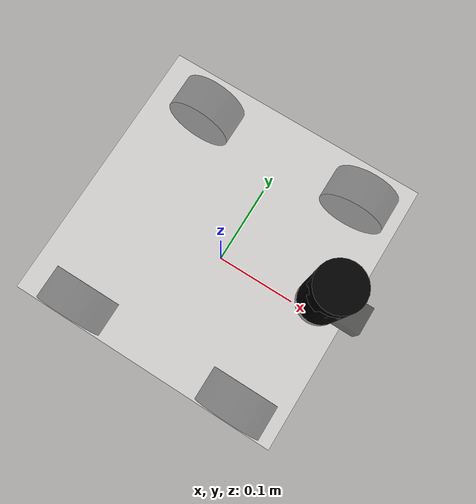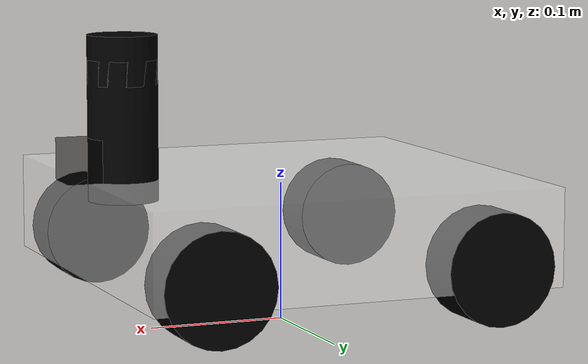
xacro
<?xml version="1.0"?>
<robot xmlns:xacro= "http://www.ros.org/wiki/xacro" name="delivery_robot">
<!-- 实车默认只加载模型；仿真入口显式开启插件并传入控制器配置。 -->
<xacro:arg name="simulation" default="false"/>
<xacro:arg name="controllers_file" default=""/>

<!-- 底盘 -->
<xacro:include filename="$(find delivery_description)/urdf/delivery_robot/base.urdf.xacro"/>
<!-- 传感器 -->
<xacro:include filename="$(find delivery_description)/urdf/delivery_robot/sensor/camera.urdf.xacro"/>
<xacro:include filename="$(find delivery_description)/urdf/delivery_robot/sensor/imu.urdf.xacro"/>
<xacro:include filename="$(find delivery_description)/urdf/delivery_robot/sensor/laser.urdf.xacro"/>
<!-- 执行器 -->
<xacro:include filename="$(find delivery_description)/urdf/delivery_robot/wheel/wheel.urdf.xacro"/>
<!-- 插件 -->
<xacro:include filename="$(find delivery_description)/urdf/delivery_robot/plugins/delivery_ros2_control.xacro"/>

<!-- 下位机参数是从车体中心到车轮中心的半尺寸：半轴距 0.103 m、半轮距 0.133 m。 -->
<xacro:property name="wheelbase_half" value="0.103"/>
<xacro:property name="track_half" value="0.133"/>

<xacro:base_xacro xyz="0.30 0.305 0.07"/>
<xacro:imu_xacro xyz="-0.065 0.02 0.0"/>
<xacro:laser_xacro xyz="0.12 0.0 0.07"/>
<xacro:camera_xacro xyz="0.15 0.0 0.05"/>
<xacro:wheel_xacro wheel_name="LeftFront_wheel" xyz="${wheelbase_half} ${track_half} -0.02"/>
<xacro:wheel_xacro wheel_name="LeftBack_wheel" xyz="${-wheelbase_half} ${track_half} -0.02"/>
<xacro:wheel_xacro wheel_name="RightFront_wheel" xyz="${wheelbase_half} ${-track_half} -0.02"/>
<xacro:wheel_xacro wheel_name="RightBack_wheel" xyz="${-wheelbase_half} ${-track_half} -0.02"/>

<xacro:if value="$(arg simulation)">
<xacro:delivery_ros2_control controllers_file="$(arg controllers_file)"/>
<!-- 接入二维雷达、IMU 与普通 RGB 相机仿真。 -->
<xacro:include filename="$(find delivery_description)/urdf/delivery_robot/plugins/gazebo_sensor_plugin.xacro"/>
<xacro:gazebo_sensor_plugin/>
</xacro:if>
</robot>

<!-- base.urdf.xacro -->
<robot xmlns:xacro= "http://www.ros.org/wiki/xacro">
    <xacro:include filename="$(find delivery_description)/urdf/delivery_robot/mass_inertia.xacro"/>

    <xacro:macro name="base_xacro" params="xyz">
        <!-- 虚拟部件 -->
        <link name="base_footprint"/>

        <!-- 机器人的身体部分 -->
        <link name="base_link">
            <!-- 部件的外观描述 -->
            <visual>
                <!-- 沿着自己几何中心的偏移和旋转量 -->
                <origin xyz="0.0 0.0 0.0" rpy="0.0 0.0 0.0"/>
                <!-- 几何形状 -->
                <geometry>
                    <!-- 立方体 -->
                    <box size="${xyz}"/>
                </geometry>
                <!-- 材质和颜色描述 -->
                <material name="white">
                    <color rgba="1.0 1.0 1.0 0.5"/>
                </material>
            </visual>
            <collision>
                <!-- 沿着自己几何中心的偏移和旋转量 -->
                <origin xyz="0.0 0.0 0.0" rpy="0.0 0.0 0.0"/>
                <!-- 几何形状 -->
                <geometry>
                    <!-- 立方体 -->
                    <box size="${xyz}"/>
                </geometry>
                <!-- 材质和颜色描述 -->
                <material name="white">
                    <color rgba="1.0 1.0 1.0 0.5"/>
                </material>
            </collision>
            <xacro:box_inertia m="2" w="0.4" h="0.3" d="0.07"/>

        </link>

        <joint name="base_footprint_joint" type="fixed">
            <origin xyz="0.0 0.0 ${0.035 + 0.04 - 0.001}" rpy="0.0 0.0 0.0"/>
            <parent link="base_footprint"/>
            <child link="base_link"/>
        </joint>
    </xacro:macro>

</robot>

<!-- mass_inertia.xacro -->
<robot xmlns:xacro="http://www.ros.org/wiki/xacro">

    <xacro:macro name="box_inertia" params="m w h d">

        <inertial>

            <mass value="${m}"/>

            <inertia
                ixx="${(m/12.0) * (h*h + d*d)}"
                ixy="0.0"
                ixz="0.0"

                iyy="${(m/12.0) * (w*w + d*d)}"
                iyz="0.0"

                izz="${(m/12.0) * (w*w + h*h)}"
            />

        </inertial>

    </xacro:macro>

    <xacro:macro name="cylinder_inertia" params="m r h">

        <inertial>

            <mass value="${m}"/>

            <inertia
                ixx="${(m/12.0) * (3*r*r + h*h)}"
                ixy="0.0"
                ixz="0.0"

                iyy="${(m/12.0) * (3*r*r + h*h)}"
                iyz="0.0"

                izz="${(m/2.0) * r*r}"
            />

        </inertial>

    </xacro:macro>

    <xacro:macro name="cylinder_inertia_y" params="m r h">

        <inertial>

            <mass value="${m}"/>

            <inertia
                ixx="${(m/12.0) * (3*r*r + h*h)}"
                ixy="0.0"
                ixz="0.0"

                iyy="${(m/2.0) * r*r}"
                iyz="0.0"

                izz="${(m/12.0) * (3*r*r + h*h)}"
            />

        </inertial>

    </xacro:macro>

    <!-- =========================================================
         实心球体惯量

         三个方向完全相同：

             I = 2/5 * m * r²
         ========================================================= -->
    <xacro:macro name="sphere_inertia" params="m r">

        <inertial>

            <mass value="${m}"/>

            <inertia
                ixx="${(2.0/5.0) * m * r*r}"
                ixy="0.0"
                ixz="0.0"

                iyy="${(2.0/5.0) * m * r*r}"
                iyz="0.0"

                izz="${(2.0/5.0) * m * r*r}"
            />

        </inertial>

    </xacro:macro>

</robot>

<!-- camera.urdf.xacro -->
<robot xmlns:xacro= "http://www.ros.org/wiki/xacro">
    <xacro:include filename="$(find delivery_description)/urdf/delivery_robot/mass_inertia.xacro"/>

    <xacro:macro name="camera_xacro" params="xyz">
        <!-- 机器人的相机部件 -->
        <link name="camera_link">
            <!-- 部件的外观描述 -->
            <visual>
                <!-- 沿着自己几何中心的偏移和旋转量 -->
                <origin xyz="0.0 0.0 0.0" rpy="0.0 0.0 0.0"/>
                <!-- 几何形状 -->
                <geometry>
                    <!-- 立方体 -->
                    <box size="0.03 0.03 0.03"/>
                </geometry>
                <!-- 材质和颜色描述 -->
                <material name="black">
                    <color rgba="0.0 0.0 0.0 0.5"/>
                </material>
            </visual>
            <collision>
                <!-- 沿着自己几何中心的偏移和旋转量 -->
                <origin xyz="0.0 0.0 0.0" rpy="0.0 0.0 0.0"/>
                <!-- 几何形状 -->
                <geometry>
                    <!-- 立方体 -->
                    <box size="0.03 0.03 0.03"/>
                </geometry>
                <!-- 材质和颜色描述 -->
                <material name="black">
                    <color rgba="0.0 0.0 0.0 0.5"/>
                </material>
            </collision>
            <!-- 0.03kg 宽度0.03m 高度0.03m 长度0.03m -->
            <xacro:box_inertia m="0.03" w="0.03" h="0.03" d="0.03"/>
        </link>

        <link name="camera_optical_link"></link>

        <!-- 机器人的关节,用于组合部件 -->
        <joint name="camera_optical_link" type="fixed">
            <parent link="camera_link"/>
            <child link="camera_optical_link"/>
            <origin xyz="0 0 0" rpy="${-pi/2} 0.0 ${-pi/2}"/>
        </joint>

        <!-- 机器人的关节,用于组合部件 -->
        <joint name="camera_joint" type="fixed">
            <parent link="base_link"/>
            <child link="camera_link"/>
            <origin xyz="${xyz}" rpy="0.0 0.0 0.0"/>
        </joint>
    </xacro:macro>

</robot>

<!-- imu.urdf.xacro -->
<robot xmlns:xacro= "http://www.ros.org/wiki/xacro">
    <xacro:include filename="$(find delivery_description)/urdf/delivery_robot/mass_inertia.xacro"/>

    <xacro:macro name="imu_xacro" params="xyz">
        <!-- 机器人的IMU部件 -->
        <link name="imu_link">
            <!-- 部件的外观描述 -->
            <visual>
                <!-- 沿着自己几何中心的偏移和旋转量 -->
                <origin xyz="0.0 0.0 0.0" rpy="0.0 0.0 0.0"/>
                <!-- 几何形状 -->
                <geometry>
                    <!-- 立方体 -->
                    <box size="0.012 0.02 0.003"/>
                </geometry>
                <!-- 材质和颜色描述 -->
                <material name="black">
                    <color rgba="0.0 0.0 0.0 0.5"/>
                </material>
            </visual>
            <collision>
                <!-- 沿着自己几何中心的偏移和旋转量 -->
                <origin xyz="0.0 0.0 0.0" rpy="0.0 0.0 0.0"/>
                <!-- 几何形状 -->
                <geometry>
                    <!-- 立方体 -->
                    <box size="0.012 0.02 0.003"/>
                </geometry>
                <!-- 材质和颜色描述 -->
                <material name="black">
                    <color rgba="0.0 0.0 0.0 0.5"/>
                </material>
            </collision>
            <!-- 0.01kg 宽度0.02m 高度0.003m 长度0.12m -->
            <xacro:box_inertia m="0.01" w="0.02" h="0.003" d="0.12"/>

        </link>

        <!-- 机器人的关节,用于组合部件 -->
        <joint name="imu_joint" type="fixed">
            <parent link="base_link"/>
            <child link="imu_link"/>
            <origin xyz="${xyz}" rpy="0.0 0.0 0.0"/>
        </joint>
    </xacro:macro>

</robot>

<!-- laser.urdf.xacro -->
<robot xmlns:xacro= "http://www.ros.org/wiki/xacro">
    <xacro:include filename="$(find delivery_description)/urdf/delivery_robot/mass_inertia.xacro"/>

    <xacro:macro name="laser_xacro" params="xyz">
        <!-- 雷达支架 -->
        <link name="laserSupport_link">
            <!-- 部件的外观描述 -->
            <visual>
                <!-- 沿着自己几何中心的偏移和旋转量 -->
                <origin xyz="0.0 0.0 0.0" rpy="0.0 0.0 0.0"/>
                <!-- 几何形状 圆柱半径0.025m，高度0.1m -->
                <geometry>
                    <cylinder radius="0.025" length="0.1"/>
                </geometry>
                <!-- 材质和颜色描述 ：黑色 不透明-->
                <material name="black">
                    <color rgba="0.0 0.0 0.0 1.0"/>
                </material>
            </visual>
            <collision>
                <!-- 沿着自己几何中心的偏移和旋转量 -->
                <origin xyz="0.0 0.0 0.0" rpy="0.0 0.0 0.0"/>
                <!-- 几何形状 圆柱半径0.025m，高度0.1m -->
                <geometry>
                    <cylinder radius="0.025" length="0.1"/>
                </geometry>
                <!-- 材质和颜色描述 ：黑色 不透明-->
                <material name="black">
                    <color rgba="0.0 0.0 0.0 1.0"/>
                </material>
            </collision>

            <xacro:cylinder_inertia m="0.1" r="0.025" h="0.1"/>

        </link>

        <link name="laser_link">
            <!-- 部件的外观描述 -->
            <visual>
                <!-- 沿着自己几何中心的偏移和旋转量 -->
                <origin xyz="0.0 0.0 0.0" rpy="0.0 0.0 0.0"/>
                <!-- 几何形状 圆柱半径0.025m，高度0.1m -->
                <geometry>
                    <cylinder radius="0.025" length="0.035"/>
                </geometry>
                <!-- 材质和颜色描述 ：黑色 不透明-->
                <material name="black">
                    <color rgba="0.0 0.0 0.0 1.0"/>
                </material>
            </visual>
            <collision>
                <!-- 沿着自己几何中心的偏移和旋转量 -->
                <origin xyz="0.0 0.0 0.0" rpy="0.0 0.0 0.0"/>
                <!-- 几何形状 圆柱半径0.025m，高度0.1m -->
                <geometry>
                    <cylinder radius="0.025" length="0.035"/>
                </geometry>
                <!-- 材质和颜色描述 ：黑色 不透明-->
                <material name="black">
                    <color rgba="0.0 0.0 0.0 1.0"/>
                </material>
            </collision>
            <xacro:cylinder_inertia  m="0.1" r="0.025" h="0.035"/>
        </link>

        <!-- 雷达固定到支撑杆上 -->
        <joint name="laserSupport_joint" type="fixed">
            <parent link="laserSupport_link"/>
            <child link="laser_link"/>
            <origin xyz="0.0 0.0 0.05" rpy="0.0 0.0 0.0"/>
        </joint>
        <!-- 支撑杆固定在车上 -->
        <joint name="laser_joint" type="fixed">
            <parent link="base_link"/>
            <child link="laserSupport_link"/>
            <origin xyz="${xyz}" rpy="0.0 0.0 0.0"/>
        </joint>

        <gazebo reference="laserSupport_link">
            <material>Gazebo/Black</material>
        </gazebo>

        <gazebo reference="laser_link">
            <material>Gazebo/Black</material>
        </gazebo>

    </xacro:macro>

</robot>

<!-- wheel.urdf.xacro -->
<robot xmlns:xacro="http://www.ros.org/wiki/xacro">
    <xacro:include filename="$(find delivery_description)/urdf/delivery_robot/mass_inertia.xacro"/>

    <xacro:macro name="wheel_xacro" params="wheel_name xyz">
        <!-- 机器人的轮子部件 -->
        <link name="${wheel_name}_link">
            <!-- 圆柱默认轴向是局部 Z；绕 X 旋转 pi/2 后沿轮轴 Y 放置。 -->
            <visual>
                <!-- 沿着自己几何中心的偏移和旋转量 -->
                <origin xyz="0.0 0.0 0.0" rpy="1.57079 0.0 0.0"/>
                <!-- 几何形状 -->
                <geometry>
                    <!-- 圆柱车轮，半径与差速控制器的 wheel_radius 保持一致。 -->
                    <cylinder radius="0.04" length="0.04"/>
                </geometry>
                <!-- 材质和颜色描述 -->
                <material name="black">
                    <color rgba="0.0 0.0 0.0 1.0"/>
                </material>
            </visual>
            <collision>
                <!-- 沿着自己几何中心的偏移和旋转量 -->
                <origin xyz="0.0 0.0 0.0" rpy="1.57079 0.0 0.0"/>
                <!-- 几何形状 -->
                <geometry>
                    <!-- 圆柱车轮，半径与差速控制器的 wheel_radius 保持一致。 -->
                    <cylinder radius="0.04" length="0.04"/>
                </geometry>
                <!-- 材质和颜色描述 -->
                <material name="black">
                    <color rgba="0.0 0.0 0.0 1.0"/>
                </material>
            </collision>
            <!-- 轮轴沿 link 的 Y 轴；惯量轴必须与真实旋转轴一致。 -->
            <xacro:cylinder_inertia_y m="0.05" r="0.04" h="0.04"/>
        </link>

        <!-- continuous 表示轮轴可以连续旋转；axis 在关节坐标系中定义。
             这里不改变关节原点朝向，所以其 Y 轴与 base_link 的 Y 轴一致。 -->
        <joint name="${wheel_name}_joint" type="continuous">
            <parent link="base_link"/>
            <child link="${wheel_name}_link"/>
            <origin xyz="${xyz}" rpy="0.0 0.0 0.0"/>
            <axis xyz="0.0 1.0 0.0"/>        <!-- 让轮子绕y轴转动 -->
        </joint>

        <!-- ==================== Gazebo 参数 ==================== -->
        <gazebo reference="${wheel_name}_link">

            <!-- Gazebo 中轮子显示为黑色 -->
            <material>Gazebo/Black</material>

            <fdir1>0.0 0.0 1.0</fdir1>
            <mu1>0.005</mu1>
            <mu2>2.0</mu2>

            <!-- 接触求解：kp 为刚度（N/m），kd 为阻尼（N·s/m）。
                 minDepth 是允许的接触深度（m），maxVel 限制穿透修正速度（m/s）。
                 这些数值与摩擦参数一起经本场景验证，用于减少落地/滚动时的数值抖动；
                 更改它们后应重新做转向、里程计和配送验收，不能视作真实轮胎参数。 -->
            <kp>1000000.0</kp>
            <kd>100.0</kd>
            <minDepth>0.001</minDepth>
            <maxVel>0.1</maxVel>

        </gazebo>

    </xacro:macro>
</robot>
